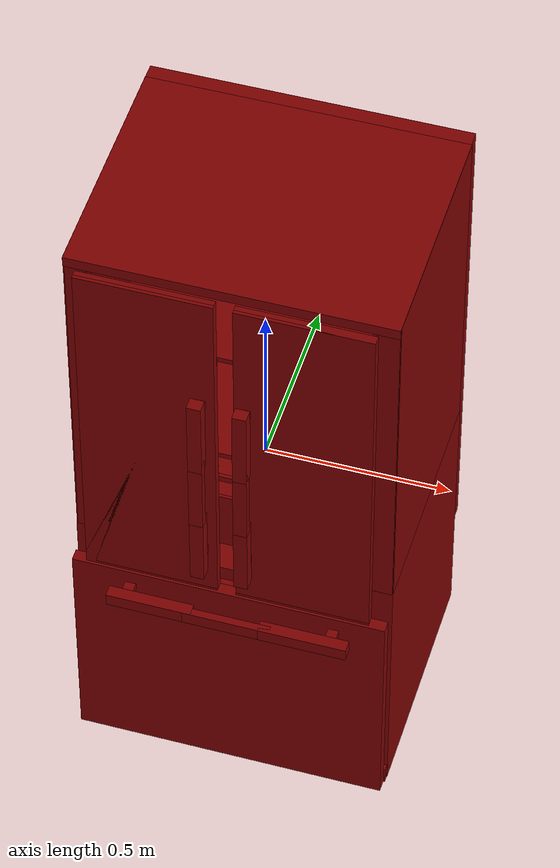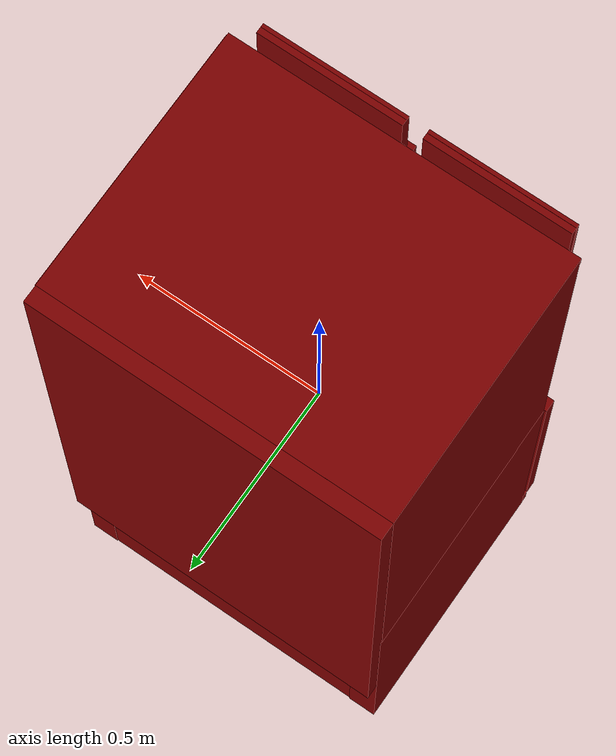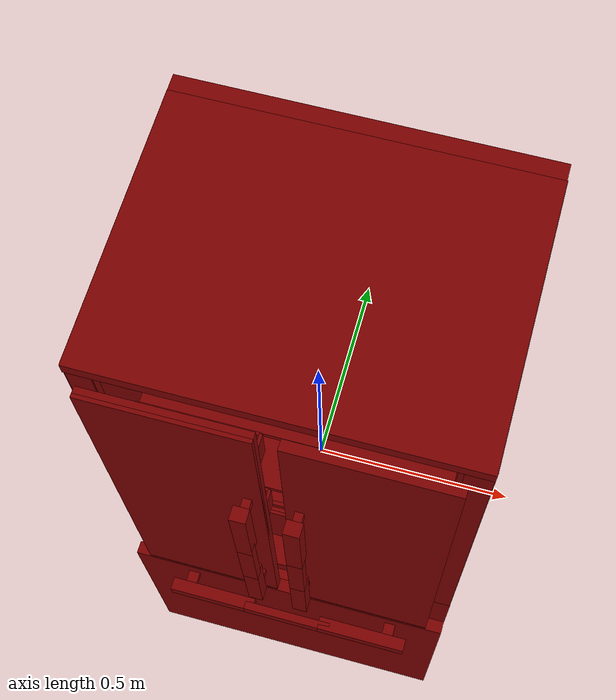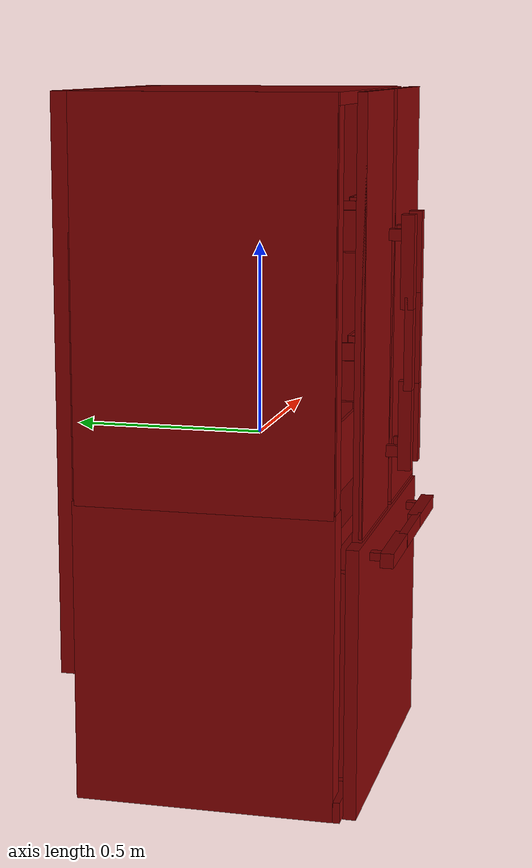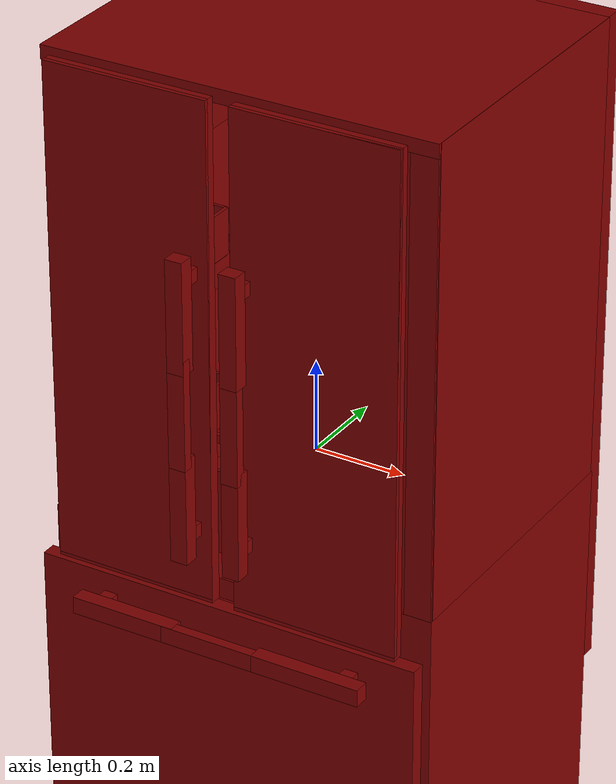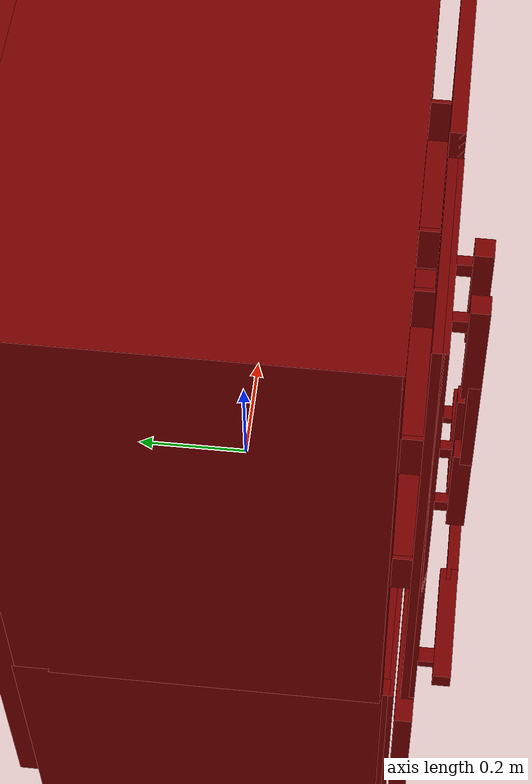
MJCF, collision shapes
<?xml version='1.0' encoding='UTF-8'?>
<mujoco model="model">
  <option timestep="0.002" gravity="0.0 0.0 -9.81"/>
  <compiler angle="radian"/>
  <asset>
    <mesh file="visuals/freezer0.obj" name="freezer0_vis"/>
    <mesh file="visuals/fridge_drawer0.obj" name="fridge_drawer0_vis"/>
    <mesh file="visuals/fridge_left_door.obj" name="fridge_left_door_vis"/>
    <mesh file="visuals/fridge_left_door_Clear.obj" name="fridge_left_door_Clear_vis"/>
    <mesh file="visuals/fridge_right_door.obj" name="fridge_right_door_vis"/>
    <mesh file="visuals/fridge_right_door_Clear.obj" name="fridge_right_door_Clear_vis"/>
    <mesh file="visuals/Body001.obj" name="Body001_vis"/>
    <mesh file="visuals/Body001_Clear.obj" name="Body001_Clear_vis"/>
    <texture file="visuals/T_BC001.png" name="Body001_material" type="2d"/>
    <material name="Body001_material" rgba="1 1 1 1.0" texture="Body001_material" shininess="0.6585055291652679" specular="0.5"/>
    <texture file="visuals/T_BC001.png" name="freezer0_material" type="2d"/>
    <material name="freezer0_material" rgba="1 1 1 1.0" texture="freezer0_material" shininess="0.6585055291652679" specular="0.3103448502657381"/>
    <texture file="visuals/T_BC001.png" name="fridge_drawer0_material" type="2d"/>
    <material name="fridge_drawer0_material" rgba="1 1 1 1.0" texture="fridge_drawer0_material" shininess="0.6585055291652679" specular="0.3103448502657381"/>
    <texture file="visuals/T_BC001.png" name="fridge_left_door_material" type="2d"/>
    <material name="fridge_left_door_material" rgba="1 1 1 1.0" texture="fridge_left_door_material" shininess="0.6585055291652679" specular="0.5"/>
    <material name="fridge_left_door_Clear_material" rgba="0.5 0.5 0.5 0.4644808769226074" shininess="0.2512328028678894" specular="0.3103448502657381"/>
    <texture file="visuals/T_BC001.png" name="fridge_right_door_material" type="2d"/>
    <material name="fridge_right_door_material" rgba="1 1 1 1.0" texture="fridge_right_door_material" shininess="0.6585055291652679" specular="0.51"/>
    <material name="fridge_right_door_Clear_material" rgba="0.5 0.5 0.5 0.4644808769226074" shininess="0.2512328028678894" specular="0.3103448502657381"/>
    <material name="Body001_Clear_material" rgba="0.5 0.5 0.5 0.4644808769226074" shininess="0.2512328028678894" specular="0.3103448502657381"/>
  </asset>
  <default>
    <default class="visual">
      <geom conaffinity="0" contype="0" group="1" type="mesh"/>
    </default>
    <default class="collision">
      <geom group="0" rgba="0.5 0 0 0.5"/>
    </default>
    <default class="spawn">
      <geom group="0" rgba="1 1 1 0.5" contype="0" conaffinity="0"/>
      <site group="0" rgba="1 1 1 0.5"/>
    </default>
    <default class="region">
      <geom group="1" conaffinity="0" contype="0" rgba="0 1 0 0"/>
    </default>
  </default>
  <worldbody>
    <body>
      <body name="object">
        <geom mesh="Body001_vis" type="mesh" solimp="0.998 0.998 0.001" solref="0.001 1" friction="0.95 0.3 0.1" class="visual" material="Body001_material"/>
        <geom class="collision" type="box" pos="-0.00180673 0.06551167 0.53586291" size="0.36514756083488464 0.2609013617038727 0.007125462871044874" quat="1.0 0.0 0.0 0.0"/>
        <geom class="collision" type="box" pos="-0.00180673 0.06632212 0.17115744" size="0.36514756083488464 0.260515421628952 0.007125534117221832" quat="1.0 0.0 0.0 0.0"/>
        <geom class="collision" type="box" pos="0.39828442 0.03990367 0.39080431" size="0.02923998050391674 0.3311096429824829 0.5013473033905029" quat="1.0 0.0 0.0 0.0"/>
        <geom class="collision" type="box" pos="-0.39735730 0.03990367 0.38492488" size="0.02778926119208336 0.33110958337783813 0.5072273015975952" quat="1.0 0.0 0.0 0.0"/>
        <geom class="collision" type="box" pos="-0.00068056 0.37480520 0.16622861" size="0.42820224165916443 0.03736213222146034 0.7259240746498108" quat="1.0 0.0 0.0 0.0"/>
        <geom class="collision" type="box" pos="-0.00038101 0.03952170 0.87705074" size="0.42864349484443665 0.3314911723136902 0.01513021532446146" quat="1.0 0.0 0.0 0.0"/>
        <geom class="collision" type="box" pos="-0.00064676 0.04528598 -0.18848027" size="0.3976375460624695 0.33060717582702637 0.02257024683058262" quat="1.0 0.0 0.0 0.0"/>
        <geom class="collision" type="box" pos="-0.39221035 0.04248410 -0.50124721" size="0.03710104897618294 0.333690881729126 0.3909066319465637" quat="1.0 0.0 0.0 0.0"/>
        <geom class="collision" type="box" pos="0.39340107 0.04248394 -0.50124703" size="0.03591073676943779 0.333690881729126 0.3909072279930115" quat="1.0 0.0 0.0 0.0"/>
        <geom class="collision" type="box" pos="-0.00035160 0.02998395 -0.86533667" size="0.4283631443977356 0.33933258056640625 0.02684331126511097" quat="1.0 0.0 0.0 0.0"/>
        <geom class="collision" type="box" pos="-0.39229952 0.04141250 0.38492315" size="0.037011969834566116 0.329602986574173 0.5072324275970459" quat="1.0 0.0 0.0 0.0"/>
        <geom class="collision" type="box" pos="0.39342876 0.04238070 0.38492300" size="0.03588290512561798 0.3286348879337311 0.5072329640388489" quat="1.0 0.0 0.0 0.0"/>
        <geom class="collision" type="box" pos="-0.00068056 0.35576339 -0.16839208" size="0.42820224165916443 0.01832031086087227 0.7237641215324402" quat="1.0 0.0 0.0 0.0"/>
        <body name="freezer0">
          <geom class="region" name="reg_freezer0" type="box" pos="-0.003242135000000007 -0.004386250000000008 -0.54376249" size="0.28634735499999997 0.29051879 0.25335638000000005"/>
          <joint axis="0.0 -1.0 0.0" pos="-0.00018082 -0.04813692 -0.53564568" limited="true" name="freezer0_door_joint" range="0.0 0.5" type="slide" damping="1" frictionloss="1" armature=".01" stiffness="0.05"/>
          <geom mesh="freezer0_vis" type="mesh" solimp="0.998 0.998 0.001" solref="0.001 1" friction="0.95 0.3 0.1" class="visual" material="freezer0_material"/>
          <geom class="collision" type="box" pos="0.01295461 -0.40424328 -0.24398531" size="0.1186128631234169 0.010918747633695602 0.018597494810819626" quat="1.0 0.0 0.0 0.0" name="freezer0_door_handle_main"/>
          <geom class="collision" type="box" pos="0.28792401 -0.36504464 -0.24418051" size="0.014738489873707294 0.021499281749129295 0.010047219693660736" quat="1.0 0.0 0.0 0.0" name="freezer0_door_handle_4"/>
          <geom class="collision" type="box" pos="-0.26557966 -0.36503245 -0.24418063" size="0.014738500118255615 0.021511469036340714 0.010047225281596184" quat="1.0 0.0 0.0 0.0" name="freezer0_door_handle_1"/>
          <geom class="collision" type="box" pos="0.22027183 -0.39839767 -0.24398522" size="0.11928550899028778 0.016862107440829277 0.018597424030303955" quat="1.0 0.0 0.0 0.0" name="freezer0_door_handle_3"/>
          <geom class="collision" type="box" pos="-0.19735314 -0.39790739 -0.24398531" size="0.1154405027627945 0.01686209812760353 0.01859743520617485" quat="1.0 0.0 0.0 0.0" name="freezer0_door_handle_2"/>
          <geom class="collision" type="box" pos="-0.00407816 -0.30708511 -0.54729827" size="0.33243587613105774 0.005104414653033018 0.2702674865722656" quat="1.0 0.0 0.0 0.0"/>
          <geom class="collision" type="box" pos="-0.00407816 0.30459116 -0.54729827" size="0.33243587613105774 0.011302503757178783 0.2702674865722656" quat="1.0 0.0 0.0 0.0"/>
          <geom class="collision" type="box" pos="0.31109558 0.00554272 -0.54246481" size="0.01726214587688446 0.3103509545326233 0.2654339075088501" quat="1.0 0.0 0.0 0.0"/>
          <geom class="collision" type="box" pos="-0.00407816 0.00554272 -0.81273223" size="0.33243587613105774 0.3103509545326233 0.004833516199141741" quat="1.0 0.0 0.0 0.0"/>
          <geom class="collision" type="box" pos="-0.31925188 0.00554272 -0.54246481" size="0.017262129113078117 0.3103509545326233 0.2654339373111725" quat="1.0 0.0 0.0 0.0"/>
          <geom class="collision" type="box" pos="-0.00014201 -0.33299367 -0.53659667" size="0.42578476667404175 0.016402756795287132 0.3445734679698944" quat="1.0 0.0 0.0 0.0" name="freezer0_door_main"/>
        </body>
        <body name="fridge_drawer0">
          <geom class="region" name="reg_fridge_drawer0" type="box" pos="0.003820970000000007 0.058295650000000004 -0.021091674999999997" size="0.29359822 0.24400423000000002 0.11912541499999998"/>
          <joint axis="0.0 -1.0 0.0" pos="-0.00771928 0.03361142 -0.07922992" limited="true" name="fridge_drawer0_joint" range="0.0 0.5" type="slide" damping="1" frictionloss="1" armature=".01" stiffness="0.05"/>
          <geom mesh="fridge_drawer0_vis" type="mesh" solimp="0.998 0.998 0.001" solref="0.001 1" friction="0.95 0.3 0.1" class="visual" material="fridge_drawer0_material"/>
          <geom class="collision" type="box" pos="0.28321563 -0.20467107 0.06221223" size="0.030655866488814354 0.004229258745908737 0.04131019487977028" quat="1.0 0.0 0.0 0.0"/>
          <geom class="collision" type="box" pos="-0.27329637 -0.20467104 0.06221223" size="0.03326001018285751 0.004229283891618252 0.041310302913188934" quat="1.0 0.0 0.0 0.0"/>
          <geom class="collision" type="box" pos="0.00365774 -0.20467107 -0.06911975" size="0.3097788095474243 0.004229281563311815 0.09351257979869843" quat="1.0 0.0 0.0 0.0"/>
          <geom class="collision" type="box" pos="0.00473378 -0.20544516 0.09782344" size="0.30903175473213196 0.005003213416785002 0.008780967444181442" quat="1.0 0.0 0.0 0.0"/>
          <geom class="collision" type="box" pos="-0.30133094 0.05996644 -0.02687556" size="0.005533413961529732 0.2602822482585907 0.13347376883029938" quat="1.0 0.0 0.0 0.0"/>
          <geom class="collision" type="box" pos="0.30975090 0.05927782 -0.02687556" size="0.004412728827446699 0.2601734697818756 0.13347367942333221" quat="1.0 0.0 0.0 0.0"/>
          <geom class="collision" type="box" pos="0.00354455 0.05916231 -0.15965770" size="0.3099266290664673 0.2599814534187317 0.0035614119842648506" quat="1.0 0.0 0.0 0.0"/>
          <geom class="collision" type="box" pos="0.00527423 0.31588449 -0.02791220" size="0.3095704913139343 0.004624564666301012 0.1324368566274643" quat="1.0 0.0 0.0 0.0"/>
        </body>
        <body name="fridge_left_door">
          <joint axis="0.0 0.0 -1.0" pos="-0.40534668 -0.32670997 0.35412271" limited="true" name="fridge_left_door_joint" range="0.0 1.5707963267948966" type="hinge" damping="1" frictionloss="1" armature=".01" stiffness="0.05"/>
          <geom mesh="fridge_left_door_vis" type="mesh" solimp="0.998 0.998 0.001" solref="0.001 1" friction="0.95 0.3 0.1" class="visual" material="fridge_left_door_material"/>
          <geom class="collision" type="box" pos="-0.20606418 -0.34469216 0.35864850" size="0.17961254715919495 0.004703699145466089 0.5338854193687439" quat="1.0 0.0 0.0 0.0" name="fridge_left_door_main"/>
          <geom class="collision" type="box" pos="-0.06023454 -0.40424325 0.25896628" size="0.01859891787171364 0.010918647982180119 0.11860646307468414" quat="1.0 0.0 0.0 0.0" name="fridge_left_door_handle_main"/>
          <geom class="collision" type="box" pos="-0.05969601 -0.36504464 0.53393565" size="0.010047980584204197 0.021499114111065865 0.014737635850906372" quat="1.0 0.0 0.0 0.0" name="fridge_left_door_handle_1"/>
          <geom class="collision" type="box" pos="-0.05969592 -0.36503239 -0.01956800" size="0.010047970339655876 0.021511301398277283 0.014737662859261036" quat="1.0 0.0 0.0 0.0" name="fridge_left_door_handle_4"/>
          <geom class="collision" type="box" pos="-0.06023460 -0.39839767 0.46628352" size="0.018598755821585655 0.016862010583281517 0.11927948147058487" quat="1.0 0.0 0.0 0.0" name="fridge_left_door_handle_2"/>
          <geom class="collision" type="box" pos="-0.06023454 -0.39790733 0.04865854" size="0.018598735332489014 0.01686202920973301 0.11543459445238113" quat="1.0 0.0 0.0 0.0" name="fridge_left_door_handle_3"/>
          <geom class="collision" type="box" pos="-0.20606418 -0.33705963 0.35493826" size="0.17961254715919495 0.01233585737645626 0.5372434258460999" quat="1.0 0.0 0.0 0.0"/>
          <geom class="collision" type="box" pos="-0.34483974 -0.27952482 0.20737773" size="0.0033341876696795225 0.0558089017868042 0.04829033091664314" quat="1.0 0.0 0.0 0.0"/>
          <geom class="collision" type="box" pos="-0.20294605 -0.22433183 0.56776534" size="0.1404041349887848 0.003358288900926709 0.048287443816661835" quat="1.0 0.0 0.0 0.0"/>
          <geom class="collision" type="box" pos="-0.20294583 -0.33478083 0.56776540" size="0.14043383300304413 0.001194413285702467 0.0482967309653759" quat="1.0 0.0 0.0 0.0"/>
          <geom class="collision" type="box" pos="-0.06267662 -0.27921392 0.56776534" size="0.003761481959372759 0.055808428674936295 0.04829017445445061" quat="1.0 0.0 0.0 0.0"/>
          <geom class="collision" type="box" pos="-0.34521149 -0.27952482 0.56776534" size="0.003705924842506647 0.05580850690603256 0.04829025641083717" quat="1.0 0.0 0.0 0.0"/>
          <geom class="collision" type="box" pos="-0.20294607 -0.27991106 0.15758217" size="0.14043408632278442 0.05600184574723244 0.0028280527330935" quat="1.0 0.0 0.0 0.0"/>
          <geom class="collision" type="box" pos="-0.20294581 -0.22433183 0.20737767" size="0.14040961861610413 0.003358387853950262 0.04828831925988197" quat="1.0 0.0 0.0 0.0"/>
          <geom class="collision" type="box" pos="-0.20294607 -0.33478083 0.20737773" size="0.14043425023555756 0.0011944229481741786 0.04829593002796173" quat="1.0 0.0 0.0 0.0"/>
          <geom class="collision" type="box" pos="-0.20294583 -0.27991103 0.51796983" size="0.14043258130550385 0.0560014583170414 0.0028280664701014757" quat="1.0 0.0 0.0 0.0"/>
          <geom class="collision" type="box" pos="-0.06267662 -0.27921392 0.20737773" size="0.0037614996545016766 0.05580882355570793 0.04829062148928642" quat="1.0 0.0 0.0 0.0"/>
          <body name="fridge_left_door_Clear">
            <geom mesh="fridge_left_door_Clear_vis" type="mesh" solimp="0.998 0.998 0.001" solref="0.001 1" friction="0.95 0.3 0.1" class="visual" material="fridge_left_door_Clear_material"/>
            <geom class="collision" type="box" pos="-0.34483974 -0.27952482 0.20737773" size="0.0033341876696795225 0.0558089017868042 0.04829033091664314" quat="1.0 0.0 0.0 0.0"/>
            <geom class="collision" type="box" pos="-0.20294605 -0.22433183 0.56776534" size="0.1404041349887848 0.003358288900926709 0.048287443816661835" quat="1.0 0.0 0.0 0.0"/>
            <geom class="collision" type="box" pos="-0.20294583 -0.33478083 0.56776540" size="0.14043383300304413 0.001194413285702467 0.0482967309653759" quat="1.0 0.0 0.0 0.0"/>
            <geom class="collision" type="box" pos="-0.06267662 -0.27921392 0.56776534" size="0.003761481959372759 0.055808428674936295 0.04829017445445061" quat="1.0 0.0 0.0 0.0"/>
            <geom class="collision" type="box" pos="-0.34521149 -0.27952482 0.56776534" size="0.003705924842506647 0.05580850690603256 0.04829025641083717" quat="1.0 0.0 0.0 0.0"/>
            <geom class="collision" type="box" pos="-0.20294607 -0.27991106 0.15758217" size="0.14043408632278442 0.05600184574723244 0.0028280527330935" quat="1.0 0.0 0.0 0.0"/>
            <geom class="collision" type="box" pos="-0.20294581 -0.22433183 0.20737767" size="0.14040961861610413 0.003358387853950262 0.04828831925988197" quat="1.0 0.0 0.0 0.0"/>
            <geom class="collision" type="box" pos="-0.20294607 -0.33478083 0.20737773" size="0.14043425023555756 0.0011944229481741786 0.04829593002796173" quat="1.0 0.0 0.0 0.0"/>
            <geom class="collision" type="box" pos="-0.20294583 -0.27991103 0.51796983" size="0.14043258130550385 0.0560014583170414 0.0028280664701014757" quat="1.0 0.0 0.0 0.0"/>
            <geom class="collision" type="box" pos="-0.06267662 -0.27921392 0.20737773" size="0.0037614996545016766 0.05580882355570793 0.04829062148928642" quat="1.0 0.0 0.0 0.0"/>
          </body>
        </body>
        <body name="fridge_right_door">
          <joint axis="0.0 0.0 1.0" pos="0.40282996 -0.32670997 0.35412268" limited="true" name="fridge_right_door_joint" range="0.0 1.5707963267948966" type="hinge" damping="1" frictionloss="1" armature=".01" stiffness="0.05"/>
          <geom mesh="fridge_right_door_vis" type="mesh" solimp="0.998 0.998 0.001" solref="0.001 1" friction="0.95 0.3 0.1" class="visual" material="fridge_right_door_material"/>
          <geom class="collision" type="box" pos="0.20252924 -0.33705963 0.35493828" size="0.17961254715919495 0.01233587134629488 0.5372434258460999" quat="1.0 0.0 0.0 0.0"/>
          <geom class="collision" type="box" pos="0.05616106 -0.36504464 0.53393565" size="0.010047880932688713 0.021498914808034897 0.014737635850906372" quat="1.0 0.0 0.0 0.0" name="fridge_right_door_handle_1"/>
          <geom class="collision" type="box" pos="0.05669965 -0.39839767 0.46628352" size="0.01859860122203827 0.0168619267642498 0.11927948147058487" quat="1.0 0.0 0.0 0.0" name="fridge_right_door_handle_2"/>
          <geom class="collision" type="box" pos="0.05669959 -0.39790733 0.04865854" size="0.018598582595586777 0.016861945390701294 0.11543459445238113" quat="1.0 0.0 0.0 0.0" name="fridge_right_door_handle_3"/>
          <geom class="collision" type="box" pos="0.05616097 -0.36503239 -0.01956801" size="0.010047837160527706 0.021511035040020943 0.014737662859261036" quat="1.0 0.0 0.0 0.0" name="fridge_right_door_handle_4"/>
          <geom class="collision" type="box" pos="0.05669959 -0.40424325 0.25896628" size="0.01859857887029648 0.010918465442955494 0.11860646307468414" quat="1.0 0.0 0.0 0.0" name="fridge_right_door_handle_main"/>
          <geom class="collision" type="box" pos="0.20252924 -0.34469216 0.35877024" size="0.17961254715919495 0.004703798796981573 0.53341144323349" quat="1.0 0.0 0.0 0.0" name="fridge_right_door_main"/>
          <geom class="collision" type="box" pos="0.34175499 -0.27921392 0.20737773" size="0.0037614996545016766 0.05580882355570793 0.04829065874218941" quat="1.0 0.0 0.0 0.0"/>
          <geom class="collision" type="box" pos="0.20196383 -0.33478083 0.20737773" size="0.13995544612407684 0.0011944229481741786 0.048295628279447556" quat="1.0 0.0 0.0 0.0"/>
          <geom class="collision" type="box" pos="0.20196408 -0.22433183 0.20737767" size="0.13993214070796967 0.00335842277854681 0.04828877002000809" quat="1.0 0.0 0.0 0.0"/>
          <geom class="collision" type="box" pos="0.20196383 -0.27991106 0.15758217" size="0.13995473086833954 0.05600184574723244 0.0028280154801905155" quat="1.0 0.0 0.0 0.0"/>
          <geom class="collision" type="box" pos="0.06017669 -0.27952482 0.56776534" size="0.003705924842506647 0.05580850690603256 0.04829062893986702" quat="1.0 0.0 0.0 0.0"/>
          <geom class="collision" type="box" pos="0.34175499 -0.27921392 0.56776534" size="0.003761481959372759 0.055808428674936295 0.04829062148928642" quat="1.0 0.0 0.0 0.0"/>
          <geom class="collision" type="box" pos="0.20196407 -0.33478083 0.56776540" size="0.13995365798473358 0.001194413285702467 0.04829568415880203" quat="1.0 0.0 0.0 0.0"/>
          <geom class="collision" type="box" pos="0.20196384 -0.22433183 0.56776534" size="0.13992802798748016 0.0033583820331841707 0.04828863963484764" quat="1.0 0.0 0.0 0.0"/>
          <geom class="collision" type="box" pos="0.06054844 -0.27952482 0.20737773" size="0.0033341876696795225 0.0558089017868042 0.048291005194187164" quat="1.0 0.0 0.0 0.0"/>
          <geom class="collision" type="box" pos="0.20196407 -0.27991103 0.51796983" size="0.13995280861854553 0.0560014583170414 0.002828015014529228" quat="1.0 0.0 0.0 0.0"/>
          <body name="fridge_right_door_Clear">
            <geom mesh="fridge_right_door_Clear_vis" type="mesh" solimp="0.998 0.998 0.001" solref="0.001 1" friction="0.95 0.3 0.1" class="visual" material="fridge_right_door_Clear_material"/>
            <geom class="collision" type="box" pos="0.34175499 -0.27921392 0.20737773" size="0.0037614996545016766 0.05580882355570793 0.04829065874218941" quat="1.0 0.0 0.0 0.0"/>
            <geom class="collision" type="box" pos="0.20196383 -0.33478083 0.20737773" size="0.13995544612407684 0.0011944229481741786 0.048295628279447556" quat="1.0 0.0 0.0 0.0"/>
            <geom class="collision" type="box" pos="0.20196408 -0.22433183 0.20737767" size="0.13993214070796967 0.00335842277854681 0.04828877002000809" quat="1.0 0.0 0.0 0.0"/>
            <geom class="collision" type="box" pos="0.20196383 -0.27991106 0.15758217" size="0.13995473086833954 0.05600184574723244 0.0028280154801905155" quat="1.0 0.0 0.0 0.0"/>
            <geom class="collision" type="box" pos="0.06017669 -0.27952482 0.56776534" size="0.003705924842506647 0.05580850690603256 0.04829062893986702" quat="1.0 0.0 0.0 0.0"/>
            <geom class="collision" type="box" pos="0.34175499 -0.27921392 0.56776534" size="0.003761481959372759 0.055808428674936295 0.04829062148928642" quat="1.0 0.0 0.0 0.0"/>
            <geom class="collision" type="box" pos="0.20196407 -0.33478083 0.56776540" size="0.13995365798473358 0.001194413285702467 0.04829568415880203" quat="1.0 0.0 0.0 0.0"/>
            <geom class="collision" type="box" pos="0.20196384 -0.22433183 0.56776534" size="0.13992802798748016 0.0033583820331841707 0.04828863963484764" quat="1.0 0.0 0.0 0.0"/>
            <geom class="collision" type="box" pos="0.06054844 -0.27952482 0.20737773" size="0.0033341876696795225 0.0558089017868042 0.048291005194187164" quat="1.0 0.0 0.0 0.0"/>
            <geom class="collision" type="box" pos="0.20196407 -0.27991103 0.51796983" size="0.13995280861854553 0.0560014583170414 0.002828015014529228" quat="1.0 0.0 0.0 0.0"/>
          </body>
        </body>
        <body name="Body001_Clear">
          <geom mesh="Body001_Clear_vis" type="mesh" solimp="0.998 0.998 0.001" solref="0.001 1" friction="0.95 0.3 0.1" class="visual" material="Body001_Clear_material"/>
          <geom class="collision" type="box" pos="-0.00180673 0.06551167 0.53586291" size="0.36514756083488464 0.2609013617038727 0.007125462871044874" quat="1.0 0.0 0.0 0.0"/>
          <geom class="collision" type="box" pos="-0.00180673 0.06632212 0.17115744" size="0.36514756083488464 0.260515421628952 0.007125534117221832" quat="1.0 0.0 0.0 0.0"/>
        </body>
        <geom class="region" name="reg_fridge_shelf1" type="box" pos="0.0014709350000000065 0.06641561 0.69998695" size="0.347102535 0.24730997999999998 0.15056369999999997"/>
        <geom class="region" name="reg_fridge_shelf0" type="box" pos="0.0014709350000000065 0.066631075 0.35267260500000003" size="0.347102535 0.24684804500000002 0.167539445"/>
        <geom class="region" name="reg_main" type="box" pos="1.4499999997918955e-07 0.03138547999999999 9.499999997775177e-08" size="0.430311635 0.38178207 0.893181515"/>
      </body>
    </body>
  </worldbody>
  <actuator>
    <motor name="freezer0_door_joint_actuator" joint="freezer0_door_joint" gear="50"/>
    <motor name="fridge_drawer0_joint_actuator" joint="fridge_drawer0_joint" gear="50"/>
    <motor name="fridge_left_door_joint_actuator" joint="fridge_left_door_joint" gear="50"/>
    <motor name="fridge_right_door_joint_actuator" joint="fridge_right_door_joint" gear="50"/>
  </actuator>
</mujoco>
